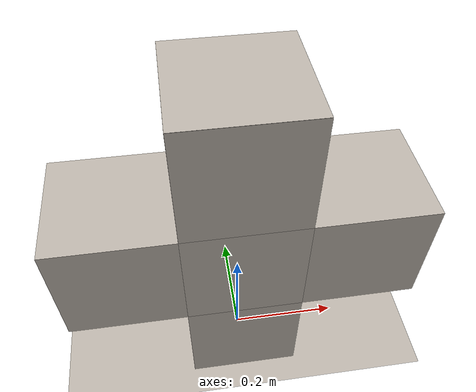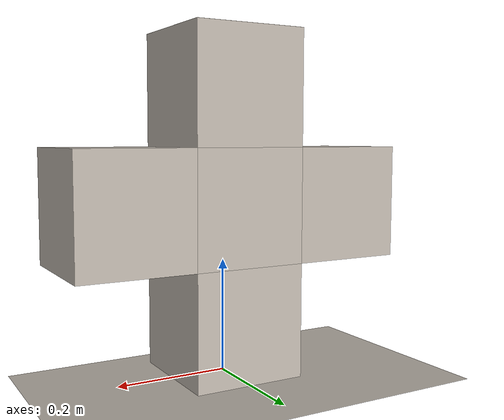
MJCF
<?xml version="1.0" encoding="utf-8"?>
<mujoco model="">
    <compiler angle="degree" autolimits="true" />
    <option timestep="0.002" gravity="0 0 -9.81" wind="0 0 0" integrator="implicitfast"
        density="1.225"
        viscosity="1.8e-5" />

    <visual>
        <global realtime="1" />
        <quality shadowsize="16384" offsamples="32" numslices="40" numstacks="32" numquads="8" />
        <headlight diffuse=".5 .5 .5" specular=".1 .1 .1" active="0" />
        <rgba fog="1 0 0 1" haze="1 1 0.878431373 1" />
    </visual>

    <asset>
        <texture type="cube" file="./iron_block.png" />
        <material name="iron_block" texture="iron_block" />
        <texture type="cube" file="./carved_pumpkin.png" />
        <material name="carved_pumpkin" texture="carved_pumpkin" />
        <texture type="cube" file="./pumpkin_side.png" />
        <material name="pumpkin_side" texture="pumpkin_side" />
        <texture type="cube" file="./pumpkin_top.png" />
        <material name="pumpkin_top" texture="pumpkin_top" />

        <texture type="skybox" file="../../MJCF/asset/desert.png"
            gridsize="3 4" gridlayout=".U..LFRB.D.." />
        <texture type="skybox" builtin="flat" rgb1="1 1 .1" rgb2=".9 .9 .9" width="128"
            height="128" />

        <texture name="plane" type="2d" builtin="checker" rgb1=".1 .1 .1" rgb2=".9 .9 .9"
            width="512" height="512" mark="cross" markrgb=".8 .8 .8" />
        <texture type="2d" file="./sea.png" />
        <material name="plane" reflectance="0.3" texture="sea" texrepeat="1 1" texuniform="true" />
    </asset>

    <worldbody>
        <geom name="floor" pos="0 0 0" size="0 0 .25" type="plane" material="plane"
            condim="3" />

        <body name="iron_golem" pos="0 0 0.5" axisangle="0 0 1 180">
            <light pos="0 1 3" dir="10 0 -1" ambient="1 1 1" cutoff="30" exponent="0"
                mode="targetbody" target="iron_golem" diffuse=".5 .5 .5" specular=" 1 1 1" />
            <light pos="0 -1 3" dir="10 0 -1" ambient="1 1 1" cutoff="30" exponent="0"
                mode="targetbody" target="iron_golem" diffuse=".5 .5 .5" specular=" 1 1 1" />

            <camera pos="0 2 .5" mode="targetbody" target="iron_golem" />
            <camera pos="2 1 .5" mode="targetbody" target="iron_golem" />
            <camera pos="-2 1 .5" mode="targetbody" target="iron_golem" />
            <camera pos="0 -2 .5" mode="targetbody" target="iron_golem" />

            <camera pos="0 0 2" mode="targetbody" target="iron_golem" />
            <camera pos="-2 -2 2" mode="targetbody" target="iron_golem" />
            <camera pos="2 2 2" mode="targetbody" target="iron_golem" />
            <camera pos="2 -2 2" mode="targetbody" target="iron_golem" />

            <camera pos="0 1 .5" mode="targetbody" target="iron_golem" />
            <camera pos="0 1.2 .5" mode="targetbody" target="iron_golem" />
            <camera pos="0 1.6 .5" mode="targetbody" target="iron_golem" />
            <camera pos="0 2 .5" mode="targetbody" target="iron_golem" />
            <camera pos="0 2.5 .5" mode="targetbody" target="iron_golem" />
            <camera pos="0 3 .5" mode="targetbody" target="iron_golem" />
            <camera pos="0 4 .5" mode="targetbody" target="iron_golem" />

            <joint name="body_run" type="slide" axis="0 1 0" />
            <geom name="pumpkin_top" type="box" size="0.0999 0.0999 0.0001" pos="0 0 0.1"
                material="pumpkin_top" />
            <geom name="carved_pumpkin" type="box" size="0.0999 0.0001 0.0999" pos="0 0.1 0"
                axisangle="0 1 0 180" material="carved_pumpkin" />
            <geom type="box" size="0.1 0.1 0.1" axisangle="1 0 0 90" material="pumpkin_side" />
            <body pos="0 0 -0.4">
                <joint name="body_jnt" type="slide" axis="0 1 0" range="-0.1 0.1" />

                <geom type="box" size="0.1 0.1 0.1" pos="0.2 0 0.2" material="iron_block" mass="0.1" />
                <geom type="box" size="0.1 0.1 0.1" pos="-0.2 0 0.2" material="iron_block"
                    mass="0.1" />
            </body>
            <body pos="0 0 -0.4">
                <joint name="arm_jnt" type="slide" axis="0 1 0" range="-0.1 0.1" />
                <geom type="box" size="0.1 0.1 0.1" pos="0 0 0.2" material="iron_block" contype="0"
                    conaffinity="0" mass="0.1" />
                <geom type="box" size="0.1 0.1 0.1" material="iron_block" contype="0"
                    conaffinity="0" mass="0.1" />
            </body>
        </body>

    </worldbody>
    <actuator>
        <velocity joint="body_jnt" kv="10" />
        <velocity joint="arm_jnt" kv="10" />
        <motor joint="body_run" />
    </actuator>
</mujoco>
